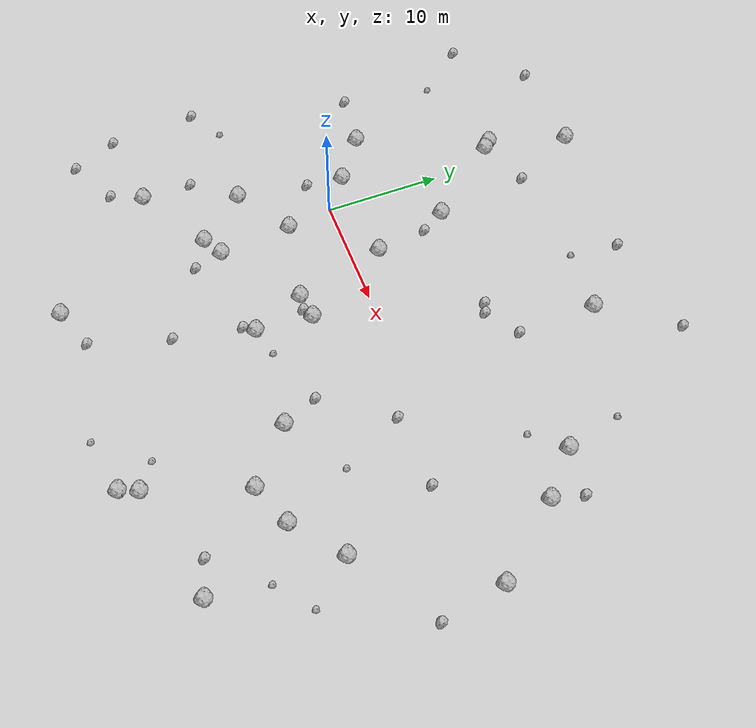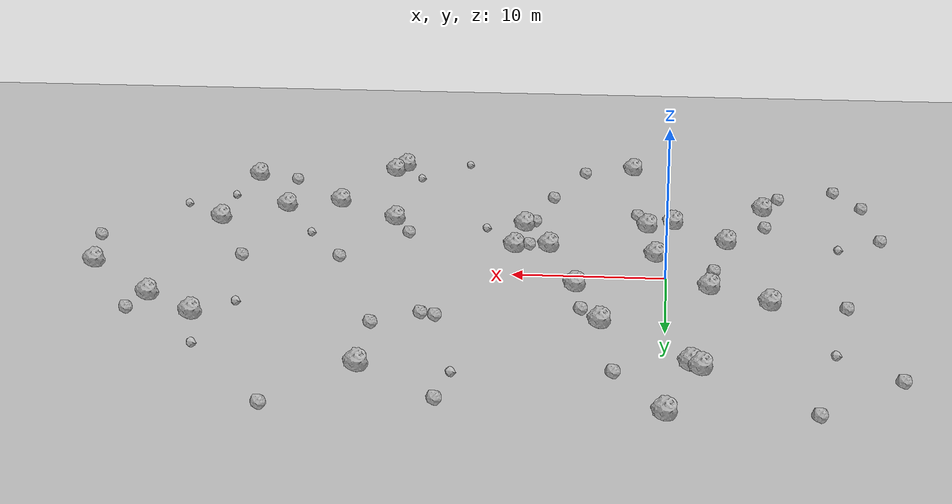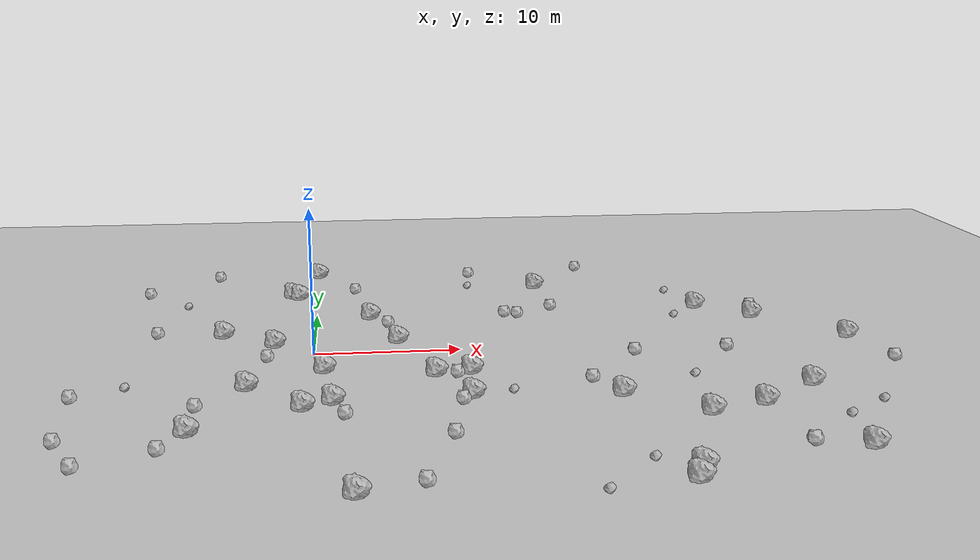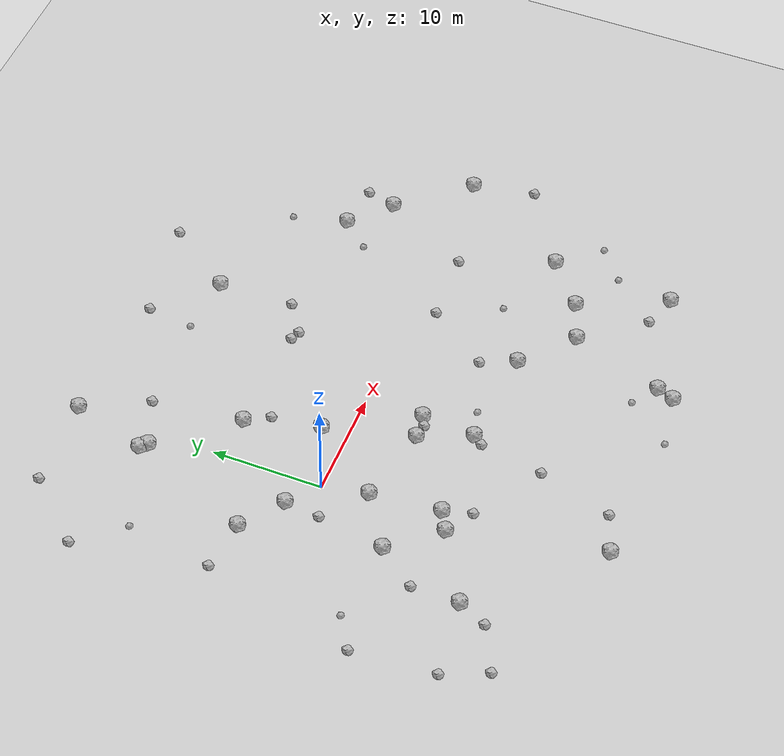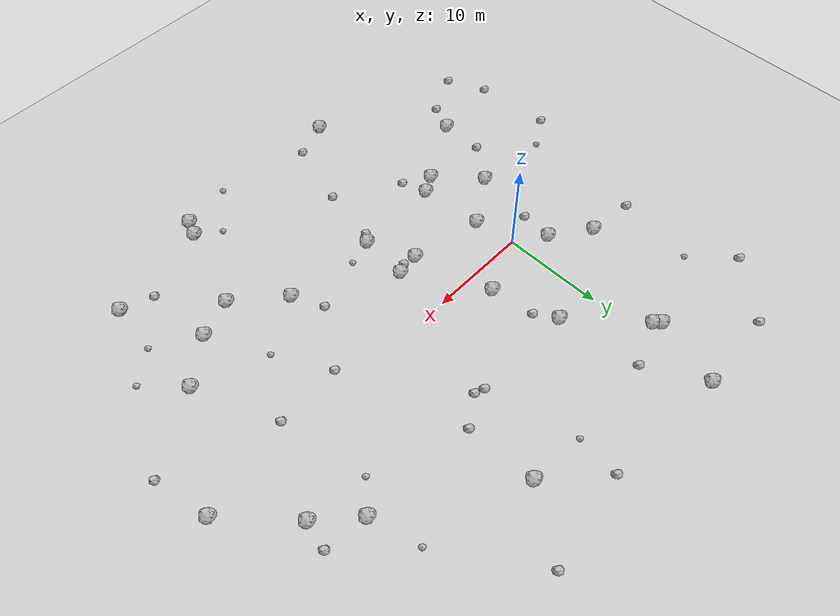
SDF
<sdf version="1.6">
 <world name="default">
  <include><uri>model://custom_ground</uri></include>
  <include><uri>model://sun</uri></include>
  <model name="rock1_0_0">
   <include><uri>model://rock1</uri><pose>0.7875030850327462 -4.04822088262074 0.5 0 0 0</pose></include>
  </model>
  <model name="rock1_0_1">
   <include><uri>model://rock1</uri><pose>-2.7111861532558557 2.1530737639394673 0.5 0 0 0</pose></include>
  </model>
  <model name="rock1_0_2">
   <include><uri>model://rock1</uri><pose>7.985816359673663 -5.506232215753201 0.5 0 0 0</pose></include>
  </model>
  <model name="rock1_0_3">
   <include><uri>model://rock1</uri><pose>17.602498212669488 17.258907443594573 0.5 0 0 0</pose></include>
  </model>
  <model name="rock1_0_4">
   <include><uri>model://rock1</uri><pose>9.952506052727355 -10.085083468673396 0.5 0 0 0</pose></include>
  </model>
  <model name="rock1_0_5">
   <include><uri>model://rock1</uri><pose>31.03313271992934 -21.007227643195233 0.5 0 0 0</pose></include>
  </model>
  <model name="rock1_0_6">
   <include><uri>model://rock1</uri><pose>-3.996822052795313 -7.189291991120637 0.5 0 0 0</pose></include>
  </model>
  <model name="rock1_0_7">
   <include><uri>model://rock1</uri><pose>20.21150958165927 -24.655644110509332 0.5 0 0 0</pose></include>
  </model>
  <model name="rock1_0_8">
   <include><uri>model://rock1</uri><pose>-1.4466466936435936 15.477507277876853 0.5 0 0 0</pose></include>
  </model>
  <model name="rock1_0_9">
   <include><uri>model://rock1</uri><pose>-6.432573667976872 4.871958737552063 0.5 0 0 0</pose></include>
  </model>
  <model name="rock1_0_10">
   <include><uri>model://rock1</uri><pose>-0.01444694796644086 22.80590339987952 0.5 0 0 0</pose></include>
  </model>
  <model name="rock1_0_11">
   <include><uri>model://rock1</uri><pose>19.186959616523175 -10.704681527130358 0.5 0 0 0</pose></include>
  </model>
  <model name="rock1_0_12">
   <include><uri>model://rock1</uri><pose>32.60450139885152 6.42078220438227 0.5 0 0 0</pose></include>
  </model>
  <model name="rock1_0_13">
   <include><uri>model://rock1</uri><pose>37.77949229154332 0.40364812318980015 0.5 0 0 0</pose></include>
  </model>
  <model name="rock1_0_14">
   <include><uri>model://rock1</uri><pose>31.51720776210619 -9.896221459575393 0.5 0 0 0</pose></include>
  </model>
  <model name="rock1_0_15">
   <include><uri>model://rock1</uri><pose>2.6852934214707886 -24.85855729662057 0.5 0 0 0</pose></include>
  </model>
  <model name="rock1_0_16">
   <include><uri>model://rock1</uri><pose>27.403807800710034 -13.240702402883525 0.5 0 0 0</pose></include>
  </model>
  <model name="rock1_0_17">
   <include><uri>model://rock1</uri><pose>4.011364625854537 8.976292649463993 0.5 0 0 0</pose></include>
  </model>
  <model name="rock1_0_18">
   <include><uri>model://rock1</uri><pose>-6.756805535585588 -15.08864236582834 0.5 0 0 0</pose></include>
  </model>
  <model name="rock1_0_19">
   <include><uri>model://rock1</uri><pose>10.303637147243311 -5.205839640888364 0.5 0 0 0</pose></include>
  </model>
  <model name="rock1_0_20">
   <include><uri>model://rock1</uri><pose>1.3918737082313264 -10.405997280427446 0.5 0 0 0</pose></include>
  </model>
  <model name="rock1_0_21">
   <include><uri>model://rock1</uri><pose>20.837829507860825 -23.089753855115188 0.5 0 0 0</pose></include>
  </model>
  <model name="rock1_0_22">
   <include><uri>model://rock1</uri><pose>-0.40330023845260143 -11.4003688657128 0.5 0 0 0</pose></include>
  </model>
  <model name="rock1_0_23">
   <include><uri>model://rock1</uri><pose>23.709320429566354 -14.630583677230621 0.5 0 0 0</pose></include>
  </model>
  <model name="rock1_0_24">
   <include><uri>model://rock1</uri><pose>-2.0148362346716624 16.06418049051362 0.5 0 0 0</pose></include>
  </model>
  <model name="rock1_0_25">
   <include><uri>model://rock1</uri><pose>29.085387182633937 9.616338570745775 0.5 0 0 0</pose></include>
  </model>
  <model name="rock1_0_26">
   <include><uri>model://rock1</uri><pose>5.8333308023137285 2.4184907663539406 0.5 0 0 0</pose></include>
  </model>
  <model name="rock2_0_0">
   <include><uri>model://rock2</uri><pose>28.268709765897604 -1.68577425489298 0.3 0 0 0</pose></include>
  </model>
  <model name="rock2_0_1">
   <include><uri>model://rock2</uri><pose>-12.146891351048744 -19.821802666213404 0.3 0 0 0</pose></include>
  </model>
  <model name="rock2_0_2">
   <include><uri>model://rock2</uri><pose>27.89796755954073 -20.006159197864385 0.3 0 0 0</pose></include>
  </model>
  <model name="rock2_0_3">
   <include><uri>model://rock2</uri><pose>2.922889484942189 17.198767779272174 0.3 0 0 0</pose></include>
  </model>
  <model name="rock2_0_4">
   <include><uri>model://rock2</uri><pose>-3.08425853732286 -1.0393787969276218 0.3 0 0 0</pose></include>
  </model>
  <model name="rock2_0_5">
   <include><uri>model://rock2</uri><pose>-8.016368929878382 -17.723118522531678 0.3 0 0 0</pose></include>
  </model>
  <model name="rock2_0_6">
   <include><uri>model://rock2</uri><pose>14.984104677958179 8.471981866289092 0.3 0 0 0</pose></include>
  </model>
  <model name="rock2_0_7">
   <include><uri>model://rock2</uri><pose>21.735861101134773 -2.003883832324199 0.3 0 0 0</pose></include>
  </model>
  <model name="rock2_0_8">
   <include><uri>model://rock2</uri><pose>-6.783358058160545 -10.753873415531746 0.3 0 0 0</pose></include>
  </model>
  <model name="rock2_0_9">
   <include><uri>model://rock2</uri><pose>2.0985516783471816 -12.931910236654392 0.3 0 0 0</pose></include>
  </model>
  <model name="rock2_0_10">
   <include><uri>model://rock2</uri><pose>38.84777082378566 -5.2036733217507205 0.3 0 0 0</pose></include>
  </model>
  <model name="rock2_0_11">
   <include><uri>model://rock2</uri><pose>5.222273045044901 6.892764648980027 0.3 0 0 0</pose></include>
  </model>
  <model name="rock2_0_12">
   <include><uri>model://rock2</uri><pose>-8.303062208619892 22.527953180964907 0.3 0 0 0</pose></include>
  </model>
  <model name="rock2_0_13">
   <include><uri>model://rock2</uri><pose>-14.483207819141217 -8.357459652357388 0.3 0 0 0</pose></include>
  </model>
  <model name="rock2_0_14">
   <include><uri>model://rock2</uri><pose>-13.87097827279119 -15.936442516931596 0.3 0 0 0</pose></include>
  </model>
  <model name="rock2_0_15">
   <include><uri>model://rock2</uri><pose>21.97850377354515 23.391824280835706 0.3 0 0 0</pose></include>
  </model>
  <model name="rock2_0_16">
   <include><uri>model://rock2</uri><pose>-13.304331317824527 17.25149082010803 0.3 0 0 0</pose></include>
  </model>
  <model name="rock2_0_17">
   <include><uri>model://rock2</uri><pose>9.299296060576097 -5.68981607277405 0.3 0 0 0</pose></include>
  </model>
  <model name="rock2_0_18">
   <include><uri>model://rock2</uri><pose>17.799675408286134 10.382769883957643 0.3 0 0 0</pose></include>
  </model>
  <model name="rock2_0_19">
   <include><uri>model://rock2</uri><pose>9.225234947846776 -10.989969129161217 0.3 0 0 0</pose></include>
  </model>
  <model name="rock2_0_20">
   <include><uri>model://rock2</uri><pose>6.2437899992456 -23.538022837997097 0.3 0 0 0</pose></include>
  </model>
  <model name="rock2_0_21">
   <include><uri>model://rock2</uri><pose>8.2608150524944 -16.776091720262123 0.3 0 0 0</pose></include>
  </model>
  <model name="rock2_0_22">
   <include><uri>model://rock2</uri><pose>14.057184572718924 8.825684909375568 0.3 0 0 0</pose></include>
  </model>
  <model name="rock2_0_23">
   <include><uri>model://rock2</uri><pose>17.77864821219029 -7.604061161005184 0.3 0 0 0</pose></include>
  </model>
  <model name="rock2_0_24">
   <include><uri>model://rock2</uri><pose>33.242296094638235 9.123662745760882 0.3 0 0 0</pose></include>
  </model>
  <model name="rock2_0_25">
   <include><uri>model://rock2</uri><pose>-11.132206749112308 5.459568788519832 0.3 0 0 0</pose></include>
  </model>
  <model name="rock2_0_26">
   <include><uri>model://rock2</uri><pose>12.526713823326133 21.962936251820054 0.3 0 0 0</pose></include>
  </model>
  <model name="rock3_0_0">
   <include><uri>model://rock3</uri><pose>12.054015494312836 17.731121274848363 0.2 0 0 0</pose></include>
  </model>
  <model name="rock3_0_1">
   <include><uri>model://rock3</uri><pose>-9.906882506905859 13.243158481525008 0.2 0 0 0</pose></include>
  </model>
  <model name="rock3_0_2">
   <include><uri>model://rock3</uri><pose>24.529564438278676 -7.4099779441867994 0.2 0 0 0</pose></include>
  </model>
  <model name="rock3_0_3">
   <include><uri>model://rock3</uri><pose>34.63667282208111 -13.522424849850697 0.2 0 0 0</pose></include>
  </model>
  <model name="rock3_0_4">
   <include><uri>model://rock3</uri><pose>12.48390519126729 -9.432836493978812 0.2 0 0 0</pose></include>
  </model>
  <model name="rock3_0_5">
   <include><uri>model://rock3</uri><pose>15.257257353078195 -25.560380298334167 0.2 0 0 0</pose></include>
  </model>
  <model name="rock3_0_6">
   <include><uri>model://rock3</uri><pose>-11.544431869315702 -6.555700940732468 0.2 0 0 0</pose></include>
  </model>
  <model name="rock3_0_7">
   <include><uri>model://rock3</uri><pose>26.738650635126156 7.050562331172706 0.2 0 0 0</pose></include>
  </model>
  <model name="rock3_0_8">
   <include><uri>model://rock3</uri><pose>31.6573957165228 -15.906352729226 0.2 0 0 0</pose></include>
  </model>
  <model name="rock3_0_9">
   <include><uri>model://rock3</uri><pose>18.557197933414876 -21.4919400926863 0.2 0 0 0</pose></include>
  </model>
  <model name="rock3_0_10">
   <include><uri>model://rock3</uri><pose>27.791134720380498 14.471691890931112 0.2 0 0 0</pose></include>
  </model>
 </world>
</sdf>
